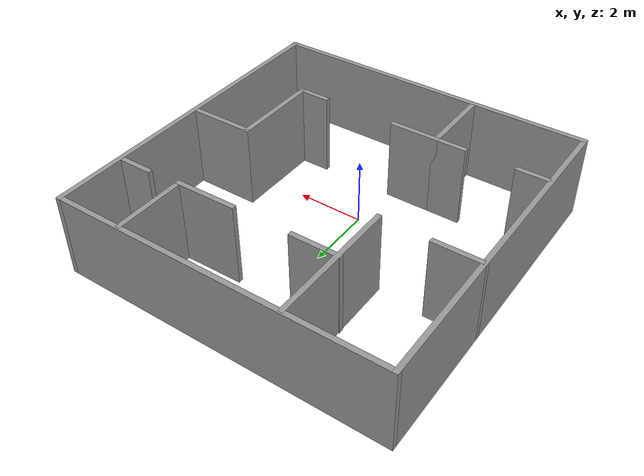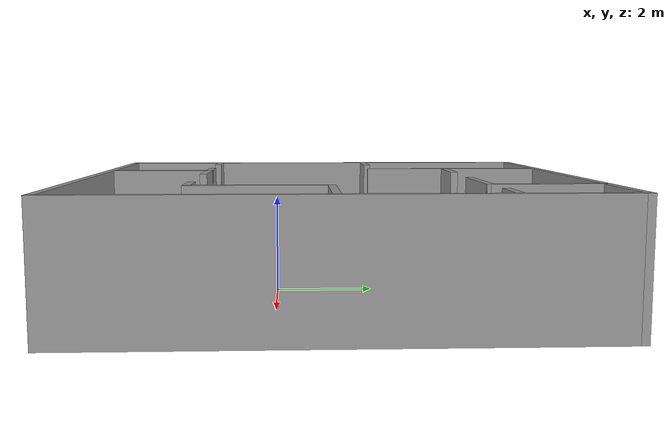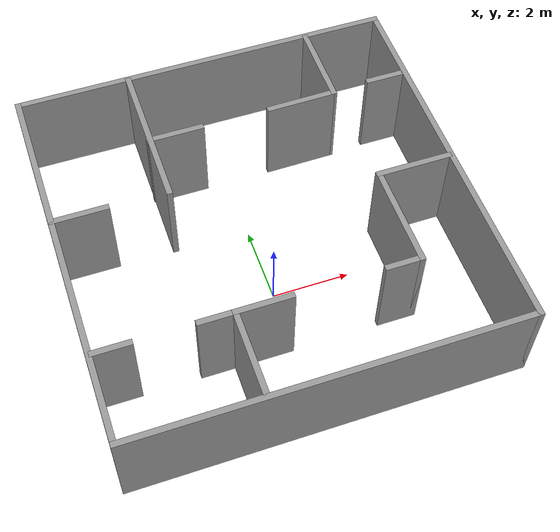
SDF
<?xml version='1.0'?>
<sdf version='1.7'>
  <model name='apartament'>
    <pose>0.079643 1.14049 0 0 -0 0</pose>
    <link name='Wall_24'>
      <collision name='Wall_24_Collision'>
        <geometry>
          <box>
            <size>10 0.15 2.5</size>
          </box>
        </geometry>
        <pose>0 0 1.25 0 -0 0</pose>
      </collision>
      <visual name='Wall_24_Visual'>
        <pose>0 0 1.25 0 -0 0</pose>
        <geometry>
          <box>
            <size>10 0.15 2.5</size>
          </box>
        </geometry>
        <material>
          <script>
            <uri>file://media/materials/scripts/gazebo.material</uri>
            <name>Gazebo/Grey</name>
          </script>
          <ambient>1 1 1 1</ambient>
        </material>
        <meta>
          <layer>0</layer>
        </meta>
      </visual>
      <pose>-4.925 0 0 0 -0 -1.5708</pose>
    </link>
    <link name='Wall_25'>
      <collision name='Wall_25_Collision'>
        <geometry>
          <box>
            <size>10 0.15 2.5</size>
          </box>
        </geometry>
        <pose>0 0 1.25 0 -0 0</pose>
      </collision>
      <visual name='Wall_25_Visual'>
        <pose>0 0 1.25 0 -0 0</pose>
        <geometry>
          <box>
            <size>10 0.15 2.5</size>
          </box>
        </geometry>
        <material>
          <script>
            <uri>file://media/materials/scripts/gazebo.material</uri>
            <name>Gazebo/Grey</name>
          </script>
          <ambient>1 1 1 1</ambient>
        </material>
        <meta>
          <layer>0</layer>
        </meta>
      </visual>
      <pose>0 -4.925 0 0 -0 0</pose>
    </link>
    <link name='Wall_26'>
      <collision name='Wall_26_Collision'>
        <geometry>
          <box>
            <size>10 0.15 2.5</size>
          </box>
        </geometry>
        <pose>0 0 1.25 0 -0 0</pose>
      </collision>
      <visual name='Wall_26_Visual'>
        <pose>0 0 1.25 0 -0 0</pose>
        <geometry>
          <box>
            <size>10 0.15 2.5</size>
          </box>
        </geometry>
        <material>
          <script>
            <uri>file://media/materials/scripts/gazebo.material</uri>
            <name>Gazebo/Grey</name>
          </script>
          <ambient>1 1 1 1</ambient>
        </material>
        <meta>
          <layer>0</layer>
        </meta>
      </visual>
      <pose>4.925 0 0 0 -0 1.5708</pose>
    </link>
    <link name='Wall_27'>
      <collision name='Wall_27_Collision'>
        <geometry>
          <box>
            <size>10 0.15 2.5</size>
          </box>
        </geometry>
        <pose>0 0 1.25 0 -0 0</pose>
      </collision>
      <visual name='Wall_27_Visual'>
        <pose>0 0 1.25 0 -0 0</pose>
        <geometry>
          <box>
            <size>10 0.15 2.5</size>
          </box>
        </geometry>
        <material>
          <script>
            <uri>file://media/materials/scripts/gazebo.material</uri>
            <name>Gazebo/Grey</name>
          </script>
          <ambient>1 1 1 1</ambient>
        </material>
        <meta>
          <layer>0</layer>
        </meta>
      </visual>
      <pose>0 4.925 0 0 -0 3.14159</pose>
    </link>
    <link name='Wall_32'>
      <collision name='Wall_32_Collision'>
        <geometry>
          <box>
            <size>1 0.15 2.5</size>
          </box>
        </geometry>
        <pose>0 0 1.25 0 -0 0</pose>
      </collision>
      <visual name='Wall_32_Visual'>
        <pose>0 0 1.25 0 -0 0</pose>
        <geometry>
          <box>
            <size>1 0.15 2.5</size>
          </box>
        </geometry>
        <material>
          <script>
            <uri>file://media/materials/scripts/gazebo.material</uri>
            <name>Gazebo/Grey</name>
          </script>
          <ambient>1 1 1 1</ambient>
        </material>
        <meta>
          <layer>0</layer>
        </meta>
      </visual>
      <pose>4.34694 2.84382 0 0 -0 3.14159</pose>
    </link>
    <link name='Wall_34'>
      <collision name='Wall_34_Collision'>
        <geometry>
          <box>
            <size>2.25 0.15 2.5</size>
          </box>
        </geometry>
        <pose>0 0 1.25 0 -0 0</pose>
      </collision>
      <visual name='Wall_34_Visual'>
        <pose>0 0 1.25 0 -0 0</pose>
        <geometry>
          <box>
            <size>2.25 0.15 2.5</size>
          </box>
        </geometry>
        <material>
          <script>
            <uri>file://media/materials/scripts/gazebo.material</uri>
            <name>Gazebo/Grey</name>
          </script>
          <ambient>1 1 1 1</ambient>
        </material>
        <meta>
          <layer>0</layer>
        </meta>
      </visual>
      <pose>2.90213 3.82521 0 0 -0 1.5708</pose>
    </link>
    <link name='Wall_36'>
      <collision name='Wall_36_Collision'>
        <geometry>
          <box>
            <size>4 0.15 2.5</size>
          </box>
        </geometry>
        <pose>0 0 1.25 0 -0 0</pose>
      </collision>
      <visual name='Wall_36_Visual'>
        <pose>0 0 1.25 0 -0 0</pose>
        <geometry>
          <box>
            <size>4 0.15 2.5</size>
          </box>
        </geometry>
        <material>
          <script>
            <uri>file://media/materials/scripts/gazebo.material</uri>
            <name>Gazebo/Grey</name>
          </script>
          <ambient>1 1 1 1</ambient>
        </material>
        <meta>
          <layer>0</layer>
        </meta>
      </visual>
      <pose>-2.02049 2.95426 0 0 -0 -1.5708</pose>
    </link>
    <link name='Wall_38'>
      <collision name='Wall_38_Collision'>
        <geometry>
          <box>
            <size>1.5 0.15 2.5</size>
          </box>
        </geometry>
        <pose>0 0 1.25 0 -0 0</pose>
      </collision>
      <visual name='Wall_38_Visual'>
        <pose>0 0 1.25 0 -0 0</pose>
        <geometry>
          <box>
            <size>1.5 0.15 2.5</size>
          </box>
        </geometry>
        <material>
          <script>
            <uri>file://media/materials/scripts/gazebo.material</uri>
            <name>Gazebo/Grey</name>
          </script>
          <ambient>1 1 1 1</ambient>
        </material>
        <meta>
          <layer>0</layer>
        </meta>
      </visual>
      <pose>-4.25 1.05995 0 0 -0 0</pose>
    </link>
    <link name='Wall_43'>
      <collision name='Wall_43_Collision'>
        <geometry>
          <box>
            <size>1.5 0.15 2.5</size>
          </box>
        </geometry>
        <pose>0 0 1.25 0 -0 0</pose>
      </collision>
      <visual name='Wall_43_Visual'>
        <pose>0 0 1.25 0 -0 0</pose>
        <geometry>
          <box>
            <size>1.5 0.15 2.5</size>
          </box>
        </geometry>
        <material>
          <script>
            <uri>file://media/materials/scripts/gazebo.material</uri>
            <name>Gazebo/Grey</name>
          </script>
          <ambient>1 1 1 1</ambient>
        </material>
        <meta>
          <layer>0</layer>
        </meta>
      </visual>
      <pose>-1.36836 2.75234 0 0 -0 0</pose>
    </link>
    <link name='Wall_47'>
      <collision name='Wall_47_Collision'>
        <geometry>
          <box>
            <size>1.89564 0.15 2.5</size>
          </box>
        </geometry>
        <pose>0 0 1.25 0 -0 0</pose>
      </collision>
      <visual name='Wall_47_Visual'>
        <pose>0 0 1.25 0 -0 0</pose>
        <geometry>
          <box>
            <size>1.89564 0.15 2.5</size>
          </box>
        </geometry>
        <material>
          <script>
            <uri>file://media/materials/scripts/gazebo.material</uri>
            <name>Gazebo/Grey</name>
          </script>
          <ambient>1 1 1 1</ambient>
        </material>
        <meta>
          <layer>0</layer>
        </meta>
      </visual>
      <pose>2.02938 2.76377 0 0 -0 -3.12849</pose>
    </link>
    <link name='Wall_55'>
      <collision name='Wall_55_Collision'>
        <geometry>
          <box>
            <size>1 0.15 2.5</size>
          </box>
        </geometry>
        <pose>0 0 1.25 0 -0 0</pose>
      </collision>
      <visual name='Wall_55_Visual'>
        <pose>0 0 1.25 0 -0 0</pose>
        <geometry>
          <box>
            <size>1 0.15 2.5</size>
          </box>
        </geometry>
        <material>
          <script>
            <uri>file://media/materials/scripts/gazebo.material</uri>
            <name>Gazebo/Grey</name>
          </script>
          <ambient>1 1 1 1</ambient>
        </material>
        <meta>
          <layer>0</layer>
        </meta>
      </visual>
      <pose>-4.42185 -2.70389 0 0 -0 0</pose>
    </link>
    <link name='Wall_59'>
      <collision name='Wall_59_Collision'>
        <geometry>
          <box>
            <size>1 0.15 2.5</size>
          </box>
        </geometry>
        <pose>0 0 1.25 0 -0 0</pose>
      </collision>
      <visual name='Wall_59_Visual'>
        <pose>0 0 1.25 0 -0 0</pose>
        <geometry>
          <box>
            <size>1 0.15 2.5</size>
          </box>
        </geometry>
        <material>
          <script>
            <uri>file://media/materials/scripts/gazebo.material</uri>
            <name>Gazebo/Grey</name>
          </script>
          <ambient>1 1 1 1</ambient>
        </material>
        <meta>
          <layer>0</layer>
        </meta>
      </visual>
      <pose>-1.97185 -2.70389 0 0 -0 0</pose>
    </link>
    <link name='Wall_60'>
      <collision name='Wall_60_Collision'>
        <geometry>
          <box>
            <size>2.25 0.15 2.5</size>
          </box>
        </geometry>
        <pose>0 0 1.25 0 -0 0</pose>
      </collision>
      <visual name='Wall_60_Visual'>
        <pose>0 0 1.25 0 -0 0</pose>
        <geometry>
          <box>
            <size>2.25 0.15 2.5</size>
          </box>
        </geometry>
        <material>
          <script>
            <uri>file://media/materials/scripts/gazebo.material</uri>
            <name>Gazebo/Grey</name>
          </script>
          <ambient>1 1 1 1</ambient>
        </material>
        <meta>
          <layer>0</layer>
        </meta>
      </visual>
      <pose>-1.54685 -3.75389 0 0 -0 -1.5708</pose>
    </link>
    <link name='Wall_67'>
      <collision name='Wall_67_Collision'>
        <geometry>
          <box>
            <size>1.5 0.15 2.5</size>
          </box>
        </geometry>
        <pose>0 0 1.25 0 -0 0</pose>
      </collision>
      <visual name='Wall_67_Visual'>
        <pose>0 0 1.25 0 -0 0</pose>
        <geometry>
          <box>
            <size>1.5 0.15 2.5</size>
          </box>
        </geometry>
        <material>
          <script>
            <uri>file://media/materials/scripts/gazebo.material</uri>
            <name>Gazebo/Grey</name>
          </script>
          <ambient>1 1 1 1</ambient>
        </material>
        <meta>
          <layer>0</layer>
        </meta>
      </visual>
      <pose>-0.87185 -2.70389 0 0 -0 0</pose>
    </link>
    <link name='Wall_69'>
      <collision name='Wall_69_Collision'>
        <geometry>
          <box>
            <size>1 0.15 2.5</size>
          </box>
        </geometry>
        <pose>0 0 1.25 0 -0 0</pose>
      </collision>
      <visual name='Wall_69_Visual'>
        <pose>0 0 1.25 0 -0 0</pose>
        <geometry>
          <box>
            <size>1 0.15 2.5</size>
          </box>
        </geometry>
        <material>
          <script>
            <uri>file://media/materials/scripts/gazebo.material</uri>
            <name>Gazebo/Grey</name>
          </script>
          <ambient>1 1 1 1</ambient>
        </material>
        <meta>
          <layer>0</layer>
        </meta>
      </visual>
      <pose>2.57815 -2.70389 0 0 -0 0</pose>
    </link>
    <link name='Wall_70'>
      <collision name='Wall_70_Collision'>
        <geometry>
          <box>
            <size>2.75 0.15 2.5</size>
          </box>
        </geometry>
        <pose>0 0 1.25 0 -0 0</pose>
      </collision>
      <visual name='Wall_70_Visual'>
        <pose>0 0 1.25 0 -0 0</pose>
        <geometry>
          <box>
            <size>2.75 0.15 2.5</size>
          </box>
        </geometry>
        <material>
          <script>
            <uri>file://media/materials/scripts/gazebo.material</uri>
            <name>Gazebo/Grey</name>
          </script>
          <ambient>1 1 1 1</ambient>
        </material>
        <meta>
          <layer>0</layer>
        </meta>
      </visual>
      <pose>3.00315 -1.40389 0 0 -0 1.5708</pose>
    </link>
    <link name='Wall_71'>
      <collision name='Wall_71_Collision'>
        <geometry>
          <box>
            <size>2 0.15 2.5</size>
          </box>
        </geometry>
        <pose>0 0 1.25 0 -0 0</pose>
      </collision>
      <visual name='Wall_71_Visual'>
        <pose>0 0 1.25 0 -0 0</pose>
        <geometry>
          <box>
            <size>2 0.15 2.5</size>
          </box>
        </geometry>
        <material>
          <script>
            <uri>file://media/materials/scripts/gazebo.material</uri>
            <name>Gazebo/Grey</name>
          </script>
          <ambient>1 1 1 1</ambient>
        </material>
        <meta>
          <layer>0</layer>
        </meta>
      </visual>
      <pose>3.92815 -0.103886 0 0 -0 0</pose>
    </link>
    <static>1</static>
  </model>
</sdf>
